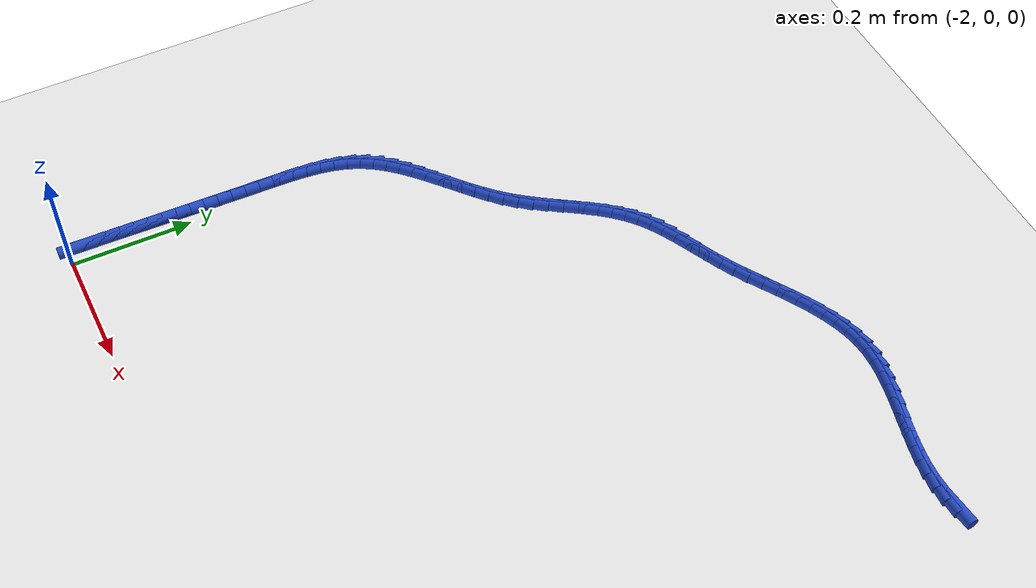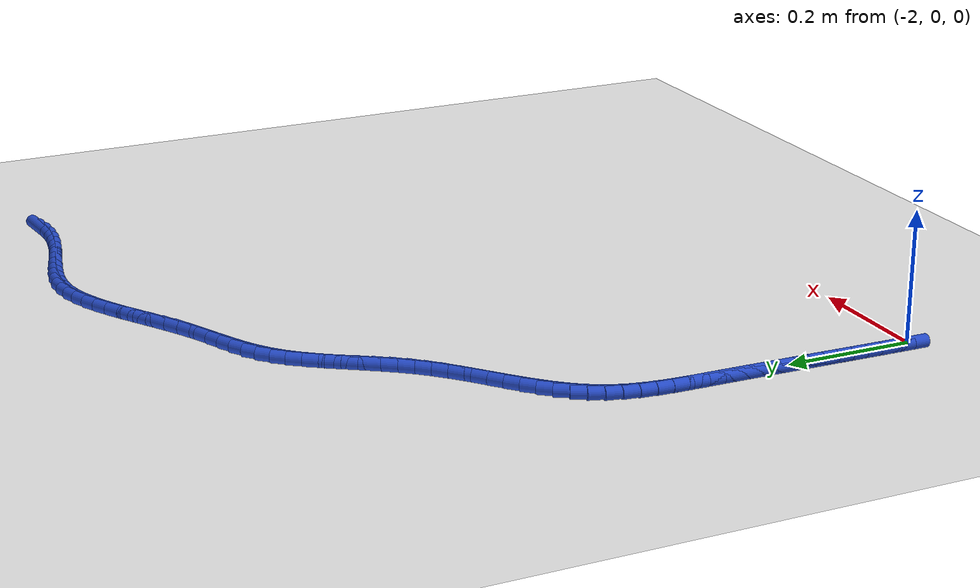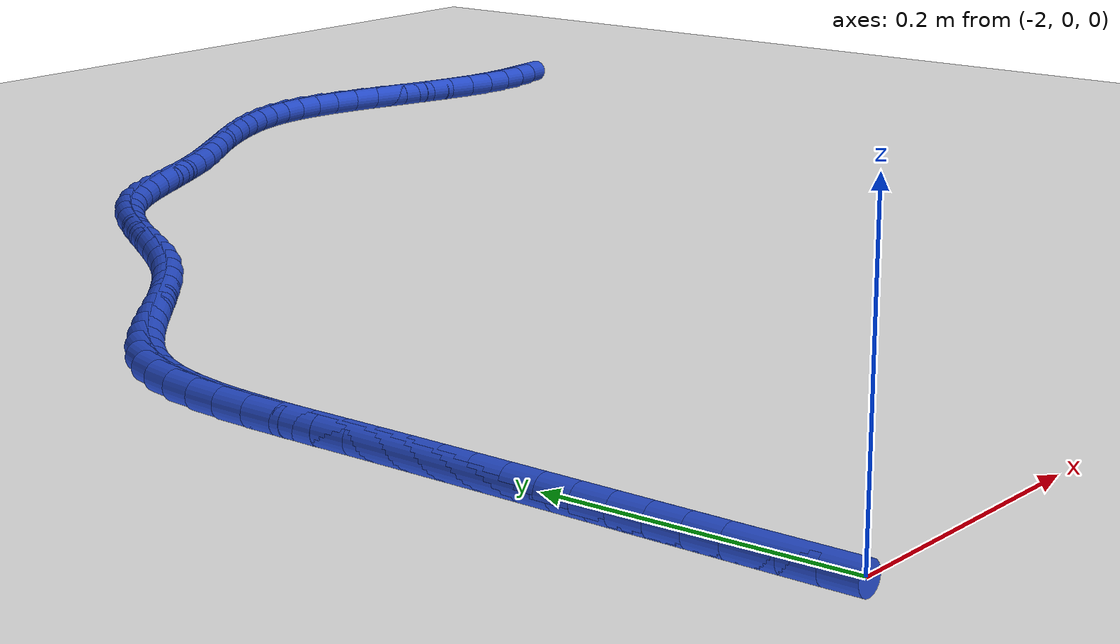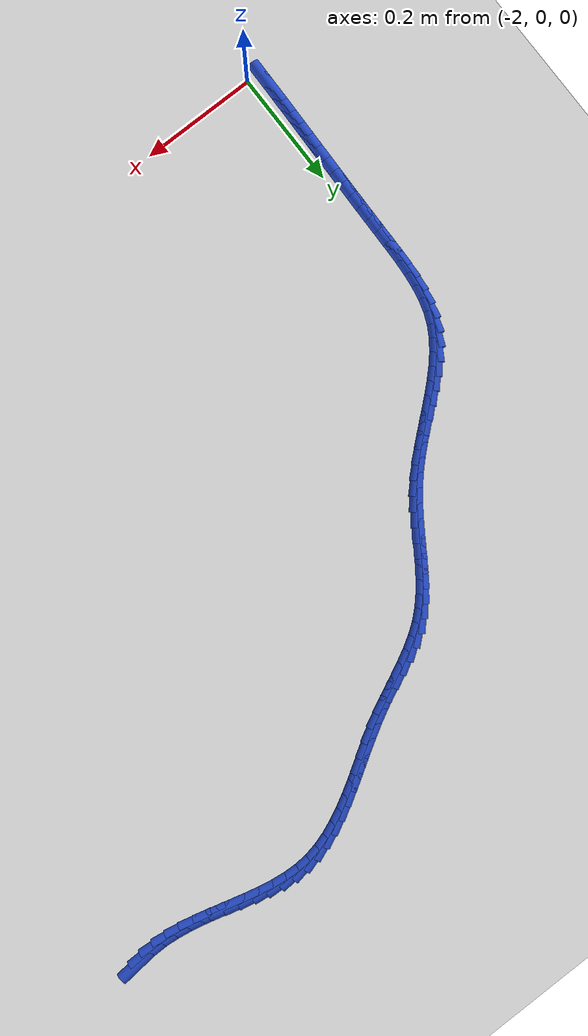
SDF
<sdf version="1.6">
 <world name="default">
  <model name="ground_plane">
   <static>1</static>
   <link name="link">
    <collision name="collision">
     <geometry><plane><normal>0 0 1</normal><size>100 100</size></plane></geometry>
     <surface><friction><ode><mu>100</mu><mu2>50</mu2></ode></friction></surface>
    </collision>
    <visual name="visual">
     <cast_shadows>0</cast_shadows>
     <geometry><plane><normal>0 0 1</normal><size>100 100</size></plane></geometry>
     <material>
      <script><uri>file://media/materials/scripts/gazebo.material</uri><name>Gazebo/WhiteGlow</name></script>
     </material>
    </visual>
   </link>
  </model>
  <model name="line">
   <link name="link_70">
    <pose>-1.0153911365871675 1.0034518861632828 0.01 0 1.57 0.09782782879122977</pose>
    <collision name="collision">
     <geometry><cylinder><radius>0.01</radius><length>0.08</length></cylinder></geometry>
    </collision>
    <visual name="visual">
     <material>
      <script><name>Gazebo/Blue</name><uri>file://media/materials/scripts/gazebo.material</uri></script>
     </material>
     <geometry><cylinder><radius>0.01</radius><length>0.08</length></cylinder></geometry>
    </visual>
   </link>
   <link name="link_71">
    <pose>-1.0383600870854588 1.0011976879082787 0.01 0 1.57 0.010987519701659995</pose>
    <collision name="collision">
     <geometry><cylinder><radius>0.01</radius><length>0.08</length></cylinder></geometry>
    </collision>
    <visual name="visual">
     <material>
      <script><name>Gazebo/Blue</name><uri>file://media/materials/scripts/gazebo.material</uri></script>
     </material>
     <geometry><cylinder><radius>0.01</radius><length>0.08</length></cylinder></geometry>
    </visual>
   </link>
   <link name="link_72">
    <pose>-1.0615263552880936 1.0009431378363367 0.01 0 1.57 -0.08242207969816732</pose>
    <collision name="collision">
     <geometry><cylinder><radius>0.01</radius><length>0.08</length></cylinder></geometry>
    </collision>
    <visual name="visual">
     <material>
      <script><name>Gazebo/Blue</name><uri>file://media/materials/scripts/gazebo.material</uri></script>
     </material>
     <geometry><cylinder><radius>0.01</radius><length>0.08</length></cylinder></geometry>
    </visual>
   </link>
   <link name="link_73">
    <pose>-1.084932706964164 1.0028767185324472 0.01 0 1.57 -0.15783585836957162</pose>
    <collision name="collision">
     <geometry><cylinder><radius>0.01</radius><length>0.08</length></cylinder></geometry>
    </collision>
    <visual name="visual">
     <material>
      <script><name>Gazebo/Blue</name><uri>file://media/materials/scripts/gazebo.material</uri></script>
     </material>
     <geometry><cylinder><radius>0.01</radius><length>0.08</length></cylinder></geometry>
    </visual>
   </link>
   <link name="link_74">
    <pose>-1.1085327808702177 1.0066328999096443 0.01 0 1.57 -0.21141081417048613</pose>
    <collision name="collision">
     <geometry><cylinder><radius>0.01</radius><length>0.08</length></cylinder></geometry>
    </collision>
    <visual name="visual">
     <material>
      <script><name>Gazebo/Blue</name><uri>file://media/materials/scripts/gazebo.material</uri></script>
     </material>
     <geometry><cylinder><radius>0.01</radius><length>0.08</length></cylinder></geometry>
    </visual>
   </link>
   <link name="link_75">
    <pose>-1.1322607819037784 1.011725351195984 0.01 0 1.57 -0.2447751935968459</pose>
    <collision name="collision">
     <geometry><cylinder><radius>0.01</radius><length>0.08</length></cylinder></geometry>
    </collision>
    <visual name="visual">
     <material>
      <script><name>Gazebo/Blue</name><uri>file://media/materials/scripts/gazebo.material</uri></script>
     </material>
     <geometry><cylinder><radius>0.01</radius><length>0.08</length></cylinder></geometry>
    </visual>
   </link>
   <link name="link_76">
    <pose>-1.1560509149623694 1.0176677416195217 0.01 0 1.57 -0.2591472423313343</pose>
    <collision name="collision">
     <geometry><cylinder><radius>0.01</radius><length>0.08</length></cylinder></geometry>
    </collision>
    <visual name="visual">
     <material>
      <script><name>Gazebo/Blue</name><uri>file://media/materials/scripts/gazebo.material</uri></script>
     </material>
     <geometry><cylinder><radius>0.01</radius><length>0.08</length></cylinder></geometry>
    </visual>
   </link>
   <link name="link_77">
    <pose>-1.1798373849435146 1.023973740408313 0.01 0 1.57 -0.2550335485878208</pose>
    <collision name="collision">
     <geometry><cylinder><radius>0.01</radius><length>0.08</length></cylinder></geometry>
    </collision>
    <visual name="visual">
     <material>
      <script><name>Gazebo/Blue</name><uri>file://media/materials/scripts/gazebo.material</uri></script>
     </material>
     <geometry><cylinder><radius>0.01</radius><length>0.08</length></cylinder></geometry>
    </visual>
   </link>
   <link name="link_78">
    <pose>-1.2035543967447362 1.030157016790413 0.01 0 1.57 -0.2321180155048603</pose>
    <collision name="collision">
     <geometry><cylinder><radius>0.01</radius><length>0.08</length></cylinder></geometry>
    </collision>
    <visual name="visual">
     <material>
      <script><name>Gazebo/Blue</name><uri>file://media/materials/scripts/gazebo.material</uri></script>
     </material>
     <geometry><cylinder><radius>0.01</radius><length>0.08</length></cylinder></geometry>
    </visual>
   </link>
   <link name="link_79">
    <pose>-1.2271361552635571 1.0357312399938772 0.01 0 1.57 -0.189268415952359</pose>
    <collision name="collision">
     <geometry><cylinder><radius>0.01</radius><length>0.08</length></cylinder></geometry>
    </collision>
    <visual name="visual">
     <material>
      <script><name>Gazebo/Blue</name><uri>file://media/materials/scripts/gazebo.material</uri></script>
     </material>
     <geometry><cylinder><radius>0.01</radius><length>0.08</length></cylinder></geometry>
    </visual>
   </link>
   <link name="link_80">
    <pose>-1.2505168653975012 1.0402100792467615 0.01 0 1.57 -0.12469113344664708</pose>
    <collision name="collision">
     <geometry><cylinder><radius>0.01</radius><length>0.08</length></cylinder></geometry>
    </collision>
    <visual name="visual">
     <material>
      <script><name>Gazebo/Blue</name><uri>file://media/materials/scripts/gazebo.material</uri></script>
     </material>
     <geometry><cylinder><radius>0.01</radius><length>0.08</length></cylinder></geometry>
    </visual>
   </link>
   <link name="link_81">
    <pose>-1.2736307320440918 1.0431072037771207 0.01 0 1.57 -0.03637702489651573</pose>
    <collision name="collision">
     <geometry><cylinder><radius>0.01</radius><length>0.08</length></cylinder></geometry>
    </collision>
    <visual name="visual">
     <material>
      <script><name>Gazebo/Blue</name><uri>file://media/materials/scripts/gazebo.material</uri></script>
     </material>
     <geometry><cylinder><radius>0.01</radius><length>0.08</length></cylinder></geometry>
    </visual>
   </link>
   <link name="link_82">
    <pose>-1.2964119601008521 1.0439362828130108 0.01 0 1.57 0.07638808209749857</pose>
    <collision name="collision">
     <geometry><cylinder><radius>0.01</radius><length>0.08</length></cylinder></geometry>
    </collision>
    <visual name="visual">
     <material>
      <script><name>Gazebo/Blue</name><uri>file://media/materials/scripts/gazebo.material</uri></script>
     </material>
     <geometry><cylinder><radius>0.01</radius><length>0.08</length></cylinder></geometry>
    </visual>
   </link>
   <link name="link_83">
    <pose>-1.3187967264677185 1.042223019768948 0.01 0 1.57 0.19576556057275368</pose>
    <collision name="collision">
     <geometry><cylinder><radius>0.01</radius><length>0.08</length></cylinder></geometry>
    </collision>
    <visual name="visual">
     <material>
      <script><name>Gazebo/Blue</name><uri>file://media/materials/scripts/gazebo.material</uri></script>
     </material>
     <geometry><cylinder><radius>0.01</radius><length>0.08</length></cylinder></geometry>
    </visual>
   </link>
   <link name="link_84">
    <pose>-1.3407818603540727 1.0378632500613099 0.01 0 1.57 0.2992208809962638</pose>
    <collision name="collision">
     <geometry><cylinder><radius>0.01</radius><length>0.08</length></cylinder></geometry>
    </collision>
    <visual name="visual">
     <material>
      <script><name>Gazebo/Blue</name><uri>file://media/materials/scripts/gazebo.material</uri></script>
     </material>
     <geometry><cylinder><radius>0.01</radius><length>0.08</length></cylinder></geometry>
    </visual>
   </link>
   <link name="link_85">
    <pose>-1.362434798247867 1.0311836915180912 0.01 0 1.57 0.38418802656964063</pose>
    <collision name="collision">
     <geometry><cylinder><radius>0.01</radius><length>0.08</length></cylinder></geometry>
    </collision>
    <visual name="visual">
     <material>
      <script><name>Gazebo/Blue</name><uri>file://media/materials/scripts/gazebo.material</uri></script>
     </material>
     <geometry><cylinder><radius>0.01</radius><length>0.08</length></cylinder></geometry>
    </visual>
   </link>
   <link name="link_86">
    <pose>-1.3838269540597115 1.022535334273225 0.01 0 1.57 0.45091934533482214</pose>
    <collision name="collision">
     <geometry><cylinder><radius>0.01</radius><length>0.08</length></cylinder></geometry>
    </collision>
    <visual name="visual">
     <material>
      <script><name>Gazebo/Blue</name><uri>file://media/materials/scripts/gazebo.material</uri></script>
     </material>
     <geometry><cylinder><radius>0.01</radius><length>0.08</length></cylinder></geometry>
    </visual>
   </link>
   <link name="link_87">
    <pose>-1.4050297417002173 1.0122691684606446 0.01 0 1.57 0.5005217125748276</pose>
    <collision name="collision">
     <geometry><cylinder><radius>0.01</radius><length>0.08</length></cylinder></geometry>
    </collision>
    <visual name="visual">
     <material>
      <script><name>Gazebo/Blue</name><uri>file://media/materials/scripts/gazebo.material</uri></script>
     </material>
     <geometry><cylinder><radius>0.01</radius><length>0.08</length></cylinder></geometry>
    </visual>
   </link>
   <link name="link_88">
    <pose>-1.4261145750799933 1.000736184214284 0.01 0 1.57 0.5343102092895422</pose>
    <collision name="collision">
     <geometry><cylinder><radius>0.01</radius><length>0.08</length></cylinder></geometry>
    </collision>
    <visual name="visual">
     <material>
      <script><name>Gazebo/Blue</name><uri>file://media/materials/scripts/gazebo.material</uri></script>
     </material>
     <geometry><cylinder><radius>0.01</radius><length>0.08</length></cylinder></geometry>
    </visual>
   </link>
   <link name="link_89">
    <pose>-1.4471528681096508 0.9882873716680759 0.01 0 1.57 0.5534334207772104</pose>
    <collision name="collision">
     <geometry><cylinder><radius>0.01</radius><length>0.08</length></cylinder></geometry>
    </collision>
    <visual name="visual">
     <material>
      <script><name>Gazebo/Blue</name><uri>file://media/materials/scripts/gazebo.material</uri></script>
     </material>
     <geometry><cylinder><radius>0.01</radius><length>0.08</length></cylinder></geometry>
    </visual>
   </link>
   <link name="link_90">
    <pose>-1.4682160346998003 0.9752737209559543 0.01 0 1.57 0.5586958250278512</pose>
    <collision name="collision">
     <geometry><cylinder><radius>0.01</radius><length>0.08</length></cylinder></geometry>
    </collision>
    <visual name="visual">
     <material>
      <script><name>Gazebo/Blue</name><uri>file://media/materials/scripts/gazebo.material</uri></script>
     </material>
     <geometry><cylinder><radius>0.01</radius><length>0.08</length></cylinder></geometry>
    </visual>
   </link>
   <link name="link_91">
    <pose>-1.4893754887610522 0.9620462222118521 0.01 0 1.57 0.5504962522842153</pose>
    <collision name="collision">
     <geometry><cylinder><radius>0.01</radius><length>0.08</length></cylinder></geometry>
    </collision>
    <visual name="visual">
     <material>
      <script><name>Gazebo/Blue</name><uri>file://media/materials/scripts/gazebo.material</uri></script>
     </material>
     <geometry><cylinder><radius>0.01</radius><length>0.08</length></cylinder></geometry>
    </visual>
   </link>
   <link name="link_92">
    <pose>-1.5107026442040161 0.9489558655697033 0.01 0 1.57 0.5288317668239446</pose>
    <collision name="collision">
     <geometry><cylinder><radius>0.01</radius><length>0.08</length></cylinder></geometry>
    </collision>
    <visual name="visual">
     <material>
      <script><name>Gazebo/Blue</name><uri>file://media/materials/scripts/gazebo.material</uri></script>
     </material>
     <geometry><cylinder><radius>0.01</radius><length>0.08</length></cylinder></geometry>
    </visual>
   </link>
   <link name="link_93">
    <pose>-1.5322689149393034 0.9363536411634411 0.01 0 1.57 0.493755831559586</pose>
    <collision name="collision">
     <geometry><cylinder><radius>0.01</radius><length>0.08</length></cylinder></geometry>
    </collision>
    <visual name="visual">
     <material>
      <script><name>Gazebo/Blue</name><uri>file://media/materials/scripts/gazebo.material</uri></script>
     </material>
     <geometry><cylinder><radius>0.01</radius><length>0.08</length></cylinder></geometry>
    </visual>
   </link>
   <link name="link_94">
    <pose>-1.5541413616909237 0.9245814040939256 0.01 0 1.57 0.4598547742486325</pose>
    <collision name="collision">
     <geometry><cylinder><radius>0.01</radius><length>0.08</length></cylinder></geometry>
    </collision>
    <visual name="visual">
     <material>
      <script><name>Gazebo/Blue</name><uri>file://media/materials/scripts/gazebo.material</uri></script>
     </material>
     <geometry><cylinder><radius>0.01</radius><length>0.08</length></cylinder></geometry>
    </visual>
   </link>
   <link name="link_95">
    <pose>-1.5762262045556468 0.9136434901722317 0.01 0 1.57 0.44634239594070624</pose>
    <collision name="collision">
     <geometry><cylinder><radius>0.01</radius><length>0.08</length></cylinder></geometry>
    </collision>
    <visual name="visual">
     <material>
      <script><name>Gazebo/Blue</name><uri>file://media/materials/scripts/gazebo.material</uri></script>
     </material>
     <geometry><cylinder><radius>0.01</radius><length>0.08</length></cylinder></geometry>
    </visual>
   </link>
   <link name="link_96">
    <pose>-1.598225453869557 0.9031157070783618 0.01 0 1.57 0.4550290601198802</pose>
    <collision name="collision">
     <geometry><cylinder><radius>0.01</radius><length>0.08</length></cylinder></geometry>
    </collision>
    <visual name="visual">
     <material>
      <script><name>Gazebo/Blue</name><uri>file://media/materials/scripts/gazebo.material</uri></script>
     </material>
     <geometry><cylinder><radius>0.01</radius><length>0.08</length></cylinder></geometry>
    </visual>
   </link>
   <link name="link_97">
    <pose>-1.6198279376918658 0.8925461998749515 0.01 0 1.57 0.4869466151172061</pose>
    <collision name="collision">
     <geometry><cylinder><radius>0.01</radius><length>0.08</length></cylinder></geometry>
    </collision>
    <visual name="visual">
     <material>
      <script><name>Gazebo/Blue</name><uri>file://media/materials/scripts/gazebo.material</uri></script>
     </material>
     <geometry><cylinder><radius>0.01</radius><length>0.08</length></cylinder></geometry>
    </visual>
   </link>
   <link name="link_98">
    <pose>-1.6407224840817858 0.8814831136246382 0.01 0 1.57 0.5434939490834807</pose>
    <collision name="collision">
     <geometry><cylinder><radius>0.01</radius><length>0.08</length></cylinder></geometry>
    </collision>
    <visual name="visual">
     <material>
      <script><name>Gazebo/Blue</name><uri>file://media/materials/scripts/gazebo.material</uri></script>
     </material>
     <geometry><cylinder><radius>0.01</radius><length>0.08</length></cylinder></geometry>
    </visual>
   </link>
   <link name="link_99">
    <pose>-1.6605979210985276 0.8694745933900583 0.01 0 1.57 0.6259131954498796</pose>
    <collision name="collision">
     <geometry><cylinder><radius>0.01</radius><length>0.08</length></cylinder></geometry>
    </collision>
    <visual name="visual">
     <material>
      <script><name>Gazebo/Blue</name><uri>file://media/materials/scripts/gazebo.material</uri></script>
     </material>
     <geometry><cylinder><radius>0.01</radius><length>0.08</length></cylinder></geometry>
    </visual>
   </link>
   <link name="link_100">
    <pose>-1.6791430768013038 0.8560687842338481 0.01 0 1.57 0.7307482890715731</pose>
    <collision name="collision">
     <geometry><cylinder><radius>0.01</radius><length>0.08</length></cylinder></geometry>
    </collision>
    <visual name="visual">
     <material>
      <script><name>Gazebo/Blue</name><uri>file://media/materials/scripts/gazebo.material</uri></script>
     </material>
     <geometry><cylinder><radius>0.01</radius><length>0.08</length></cylinder></geometry>
    </visual>
   </link>
   <link name="link_101">
    <pose>-1.6960967388551773 0.8408737932004038 0.01 0 1.57 0.8279976988671648</pose>
    <collision name="collision">
     <geometry><cylinder><radius>0.01</radius><length>0.08</length></cylinder></geometry>
    </collision>
    <visual name="visual">
     <material>
      <script><name>Gazebo/Blue</name><uri>file://media/materials/scripts/gazebo.material</uri></script>
     </material>
     <geometry><cylinder><radius>0.01</radius><length>0.08</length></cylinder></geometry>
    </visual>
   </link>
   <link name="link_102">
    <pose>-1.7116041265971802 0.8239855303919092 0.01 0 1.57 0.9025857986357847</pose>
    <collision name="collision">
     <geometry><cylinder><radius>0.01</radius><length>0.08</length></cylinder></geometry>
    </collision>
    <visual name="visual">
     <material>
      <script><name>Gazebo/Blue</name><uri>file://media/materials/scripts/gazebo.material</uri></script>
     </material>
     <geometry><cylinder><radius>0.01</radius><length>0.08</length></cylinder></geometry>
    </visual>
   </link>
   <link name="link_103">
    <pose>-1.7260082708718312 0.8057373211143195 0.01 0 1.57 0.9547284005783051</pose>
    <collision name="collision">
     <geometry><cylinder><radius>0.01</radius><length>0.08</length></cylinder></geometry>
    </collision>
    <visual name="visual">
     <material>
      <script><name>Gazebo/Blue</name><uri>file://media/materials/scripts/gazebo.material</uri></script>
     </material>
     <geometry><cylinder><radius>0.01</radius><length>0.08</length></cylinder></geometry>
    </visual>
   </link>
   <link name="link_104">
    <pose>-1.7396535245655038 0.7864640774004691 0.01 0 1.57 0.9855103359040078</pose>
    <collision name="collision">
     <geometry><cylinder><radius>0.01</radius><length>0.08</length></cylinder></geometry>
    </collision>
    <visual name="visual">
     <material>
      <script><name>Gazebo/Blue</name><uri>file://media/materials/scripts/gazebo.material</uri></script>
     </material>
     <geometry><cylinder><radius>0.01</radius><length>0.08</length></cylinder></geometry>
    </visual>
   </link>
   <link name="link_105">
    <pose>-1.752884240564571 0.766500711283194 0.01 0 1.57 0.9960331178437193</pose>
    <collision name="collision">
     <geometry><cylinder><radius>0.01</radius><length>0.08</length></cylinder></geometry>
    </collision>
    <visual name="visual">
     <material>
      <script><name>Gazebo/Blue</name><uri>file://media/materials/scripts/gazebo.material</uri></script>
     </material>
     <geometry><cylinder><radius>0.01</radius><length>0.08</length></cylinder></geometry>
    </visual>
   </link>
   <link name="link_106">
    <pose>-1.7660447717554064 0.7461821347953289 0.01 0 1.57 0.9870452478945319</pose>
    <collision name="collision">
     <geometry><cylinder><radius>0.01</radius><length>0.08</length></cylinder></geometry>
    </collision>
    <visual name="visual">
     <material>
      <script><name>Gazebo/Blue</name><uri>file://media/materials/scripts/gazebo.material</uri></script>
     </material>
     <geometry><cylinder><radius>0.01</radius><length>0.08</length></cylinder></geometry>
    </visual>
   </link>
   <link name="link_107">
    <pose>-1.7794794710243846 0.7258432599697092 0.01 0 1.57 0.9588568464816027</pose>
    <collision name="collision">
     <geometry><cylinder><radius>0.01</radius><length>0.08</length></cylinder></geometry>
    </collision>
    <visual name="visual">
     <material>
      <script><name>Gazebo/Blue</name><uri>file://media/materials/scripts/gazebo.material</uri></script>
     </material>
     <geometry><cylinder><radius>0.01</radius><length>0.08</length></cylinder></geometry>
    </visual>
   </link>
   <link name="link_108">
    <pose>-1.793532691257877 0.7058189988391694 0.01 0 1.57 0.9114645203342018</pose>
    <collision name="collision">
     <geometry><cylinder><radius>0.01</radius><length>0.08</length></cylinder></geometry>
    </collision>
    <visual name="visual">
     <material>
      <script><name>Gazebo/Blue</name><uri>file://media/materials/scripts/gazebo.material</uri></script>
     </material>
     <geometry><cylinder><radius>0.01</radius><length>0.08</length></cylinder></geometry>
    </visual>
   </link>
   <link name="link_109">
    <pose>-1.8085487853422597 0.6864442634365454 0.01 0 1.57 0.8468102616640416</pose>
    <collision name="collision">
     <geometry><cylinder><radius>0.01</radius><length>0.08</length></cylinder></geometry>
    </collision>
    <visual name="visual">
     <material>
      <script><name>Gazebo/Blue</name><uri>file://media/materials/scripts/gazebo.material</uri></script>
     </material>
     <geometry><cylinder><radius>0.01</radius><length>0.08</length></cylinder></geometry>
    </visual>
   </link>
   <link name="link_110">
    <pose>-1.8248346660096881 0.6680243432362047 0.01 0 1.57 0.786531295431837</pose>
    <collision name="collision">
     <geometry><cylinder><radius>0.01</radius><length>0.08</length></cylinder></geometry>
    </collision>
    <visual name="visual">
     <material>
      <script><name>Gazebo/Blue</name><uri>file://media/materials/scripts/gazebo.material</uri></script>
     </material>
     <geometry><cylinder><radius>0.01</radius><length>0.08</length></cylinder></geometry>
    </visual>
   </link>
   <link name="link_111">
    <pose>-1.8422828018042046 0.6505366204842774 0.01 0 1.57 0.7436578281432166</pose>
    <collision name="collision">
     <geometry><cylinder><radius>0.01</radius><length>0.08</length></cylinder></geometry>
    </collision>
    <visual name="visual">
     <material>
      <script><name>Gazebo/Blue</name><uri>file://media/materials/scripts/gazebo.material</uri></script>
     </material>
     <geometry><cylinder><radius>0.01</radius><length>0.08</length></cylinder></geometry>
    </visual>
   </link>
   <link name="link_112">
    <pose>-1.8605278331931914 0.6337544844830793 0.01 0 1.57 0.7178476520900512</pose>
    <collision name="collision">
     <geometry><cylinder><radius>0.01</radius><length>0.08</length></cylinder></geometry>
    </collision>
    <visual name="visual">
     <material>
      <script><name>Gazebo/Blue</name><uri>file://media/materials/scripts/gazebo.material</uri></script>
     </material>
     <geometry><cylinder><radius>0.01</radius><length>0.08</length></cylinder></geometry>
    </visual>
   </link>
   <link name="link_113">
    <pose>-1.879200513104859 0.6174482487234398 0.01 0 1.57 0.7087742691177175</pose>
    <collision name="collision">
     <geometry><cylinder><radius>0.01</radius><length>0.08</length></cylinder></geometry>
    </collision>
    <visual name="visual">
     <material>
      <script><name>Gazebo/Blue</name><uri>file://media/materials/scripts/gazebo.material</uri></script>
     </material>
     <geometry><cylinder><radius>0.01</radius><length>0.08</length></cylinder></geometry>
    </visual>
   </link>
   <link name="link_114">
    <pose>-1.8979315944674169 0.6013882266961902 0.01 0 1.57 0.7165436397375144</pose>
    <collision name="collision">
     <geometry><cylinder><radius>0.01</radius><length>0.08</length></cylinder></geometry>
    </collision>
    <visual name="visual">
     <material>
      <script><name>Gazebo/Blue</name><uri>file://media/materials/scripts/gazebo.material</uri></script>
     </material>
     <geometry><cylinder><radius>0.01</radius><length>0.08</length></cylinder></geometry>
    </visual>
   </link>
   <link name="link_115">
    <pose>-1.916351830209078 0.5853447318921601 0.01 0 1.57 0.7417896890310126</pose>
    <collision name="collision">
     <geometry><cylinder><radius>0.01</radius><length>0.08</length></cylinder></geometry>
    </collision>
    <visual name="visual">
     <material>
      <script><name>Gazebo/Blue</name><uri>file://media/materials/scripts/gazebo.material</uri></script>
     </material>
     <geometry><cylinder><radius>0.01</radius><length>0.08</length></cylinder></geometry>
    </visual>
   </link>
   <link name="link_116">
    <pose>-1.9340919732580513 0.5690880778021798 0.01 0 1.57 0.7856586162709317</pose>
    <collision name="collision">
     <geometry><cylinder><radius>0.01</radius><length>0.08</length></cylinder></geometry>
    </collision>
    <visual name="visual">
     <material>
      <script><name>Gazebo/Blue</name><uri>file://media/materials/scripts/gazebo.material</uri></script>
     </material>
     <geometry><cylinder><radius>0.01</radius><length>0.08</length></cylinder></geometry>
    </visual>
   </link>
   <link name="link_117">
    <pose>-1.9507827765425483 0.5523885779170792 0.01 0 1.57 0.8496338841705936</pose>
    <collision name="collision">
     <geometry><cylinder><radius>0.01</radius><length>0.08</length></cylinder></geometry>
    </collision>
    <visual name="visual">
     <material>
      <script><name>Gazebo/Blue</name><uri>file://media/materials/scripts/gazebo.material</uri></script>
     </material>
     <geometry><cylinder><radius>0.01</radius><length>0.08</length></cylinder></geometry>
    </visual>
   </link>
   <link name="link_118">
    <pose>-1.96605499299078 0.5350165457276892 0.01 0 1.57 0.9350909355980366</pose>
    <collision name="collision">
     <geometry><cylinder><radius>0.01</radius><length>0.08</length></cylinder></geometry>
    </collision>
    <visual name="visual">
     <material>
      <script><name>Gazebo/Blue</name><uri>file://media/materials/scripts/gazebo.material</uri></script>
     </material>
     <geometry><cylinder><radius>0.01</radius><length>0.08</length></cylinder></geometry>
    </visual>
   </link>
   <link name="link_119">
    <pose>-1.9795393755309576 0.5167422947248396 0.01 0 1.57 1.0424511098738443</pose>
    <collision name="collision">
     <geometry><cylinder><radius>0.01</radius><length>0.08</length></cylinder></geometry>
    </collision>
    <visual name="visual">
     <material>
      <script><name>Gazebo/Blue</name><uri>file://media/materials/scripts/gazebo.material</uri></script>
     </material>
     <geometry><cylinder><radius>0.01</radius><length>0.08</length></cylinder></geometry>
    </visual>
   </link>
   <link name="link_120">
    <pose>-1.9908666770912906 0.4973361383993608 0.01 0 1.57 1.1684162316057913</pose>
    <collision name="collision">
     <geometry><cylinder><radius>0.01</radius><length>0.08</length></cylinder></geometry>
    </collision>
    <visual name="visual">
     <material>
      <script><name>Gazebo/Blue</name><uri>file://media/materials/scripts/gazebo.material</uri></script>
     </material>
     <geometry><cylinder><radius>0.01</radius><length>0.08</length></cylinder></geometry>
    </visual>
   </link>
   <link name="link_121">
    <pose>-1.999697527051597 0.476587038721617 0.01 0 1.57 1.2874068565234789</pose>
    <collision name="collision">
     <geometry><cylinder><radius>0.01</radius><length>0.08</length></cylinder></geometry>
    </collision>
    <visual name="visual">
     <material>
      <script><name>Gazebo/Blue</name><uri>file://media/materials/scripts/gazebo.material</uri></script>
     </material>
     <geometry><cylinder><radius>0.01</radius><length>0.08</length></cylinder></geometry>
    </visual>
   </link>
   <link name="link_122">
    <pose>-2.006115853661543 0.45454817512712775 0.01 0 1.57 1.3822493249259864</pose>
    <collision name="collision">
     <geometry><cylinder><radius>0.01</radius><length>0.08</length></cylinder></geometry>
    </collision>
    <visual name="visual">
     <material>
      <script><name>Gazebo/Blue</name><uri>file://media/materials/scripts/gazebo.material</uri></script>
     </material>
     <geometry><cylinder><radius>0.01</radius><length>0.08</length></cylinder></geometry>
    </visual>
   </link>
   <link name="link_123">
    <pose>-2.010519710441817 0.4314687998235448 0.01 0 1.57 1.4542204618017907</pose>
    <collision name="collision">
     <geometry><cylinder><radius>0.01</radius><length>0.08</length></cylinder></geometry>
    </collision>
    <visual name="visual">
     <material>
      <script><name>Gazebo/Blue</name><uri>file://media/materials/scripts/gazebo.material</uri></script>
     </material>
     <geometry><cylinder><radius>0.01</radius><length>0.08</length></cylinder></geometry>
    </visual>
   </link>
   <link name="link_124">
    <pose>-2.013314581821153 0.4076028032914421 0.01 0 1.57 1.5056650798893778</pose>
    <collision name="collision">
     <geometry><cylinder><radius>0.01</radius><length>0.08</length></cylinder></geometry>
    </collision>
    <visual name="visual">
     <material>
      <script><name>Gazebo/Blue</name><uri>file://media/materials/scripts/gazebo.material</uri></script>
     </material>
     <geometry><cylinder><radius>0.01</radius><length>0.08</length></cylinder></geometry>
    </visual>
   </link>
   <link name="link_125">
    <pose>-2.0149059522282804 0.3832040760113937 0.01 0 1.57 1.5386586086296468</pose>
    <collision name="collision">
     <geometry><cylinder><radius>0.01</radius><length>0.08</length></cylinder></geometry>
    </collision>
    <visual name="visual">
     <material>
      <script><name>Gazebo/Blue</name><uri>file://media/materials/scripts/gazebo.material</uri></script>
     </material>
     <geometry><cylinder><radius>0.01</radius><length>0.08</length></cylinder></geometry>
    </visual>
   </link>
   <link name="link_126">
    <pose>-2.01569930609193 0.35852650846397327 0.01 0 1.57 1.5545718030859106</pose>
    <collision name="collision">
     <geometry><cylinder><radius>0.01</radius><length>0.08</length></cylinder></geometry>
    </collision>
    <visual name="visual">
     <material>
      <script><name>Gazebo/Blue</name><uri>file://media/materials/scripts/gazebo.material</uri></script>
     </material>
     <geometry><cylinder><radius>0.01</radius><length>0.08</length></cylinder></geometry>
    </visual>
   </link>
   <link name="link_127">
    <pose>-2.016100127840835 0.33382399112975586 0.01 0 1.57 1.5557562844316384</pose>
    <collision name="collision">
     <geometry><cylinder><radius>0.01</radius><length>0.08</length></cylinder></geometry>
    </collision>
    <visual name="visual">
     <material>
      <script><name>Gazebo/Blue</name><uri>file://media/materials/scripts/gazebo.material</uri></script>
     </material>
     <geometry><cylinder><radius>0.01</radius><length>0.08</length></cylinder></geometry>
    </visual>
   </link>
   <link name="link_128">
    <pose>-2.0164687058212523 0.3093193933391533 0.01 0 1.57 1.5532172200344816</pose>
    <collision name="collision">
     <geometry><cylinder><radius>0.01</radius><length>0.08</length></cylinder></geometry>
    </collision>
    <visual name="visual">
     <material>
      <script><name>Gazebo/Blue</name><uri>file://media/materials/scripts/gazebo.material</uri></script>
     </material>
     <geometry><cylinder><radius>0.01</radius><length>0.08</length></cylinder></geometry>
    </visual>
   </link>
   <link name="link_129">
    <pose>-2.016895378762641 0.28505029961157613 0.01 0 1.57 1.5510474250908324</pose>
    <collision name="collision">
     <geometry><cylinder><radius>0.01</radius><length>0.08</length></cylinder></geometry>
    </collision>
    <visual name="visual">
     <material>
      <script><name>Gazebo/Blue</name><uri>file://media/materials/scripts/gazebo.material</uri></script>
     </material>
     <geometry><cylinder><radius>0.01</radius><length>0.08</length></cylinder></geometry>
    </visual>
   </link>
   <link name="link_130">
    <pose>-2.0173706880589206 0.26098579675685135 0.01 0 1.57 1.5492715364120768</pose>
    <collision name="collision">
     <geometry><cylinder><radius>0.01</radius><length>0.08</length></cylinder></geometry>
    </collision>
    <visual name="visual">
     <material>
      <script><name>Gazebo/Blue</name><uri>file://media/materials/scripts/gazebo.material</uri></script>
     </material>
     <geometry><cylinder><radius>0.01</radius><length>0.08</length></cylinder></geometry>
    </visual>
   </link>
   <link name="link_131">
    <pose>-2.0178850148646887 0.2370948616016437 0.01 0 1.57 1.5479050706010848</pose>
    <collision name="collision">
     <geometry><cylinder><radius>0.01</radius><length>0.08</length></cylinder></geometry>
    </collision>
    <visual name="visual">
     <material>
      <script><name>Gazebo/Blue</name><uri>file://media/materials/scripts/gazebo.material</uri></script>
     </material>
     <geometry><cylinder><radius>0.01</radius><length>0.08</length></cylinder></geometry>
    </visual>
   </link>
   <link name="link_132">
    <pose>-2.0184287403345436 0.21334647097261883 0.01 0 1.57 1.5469607434012527</pose>
    <collision name="collision">
     <geometry><cylinder><radius>0.01</radius><length>0.08</length></cylinder></geometry>
    </collision>
    <visual name="visual">
     <material>
      <script><name>Gazebo/Blue</name><uri>file://media/materials/scripts/gazebo.material</uri></script>
     </material>
     <geometry><cylinder><radius>0.01</radius><length>0.08</length></cylinder></geometry>
    </visual>
   </link>
   <link name="link_133">
    <pose>-2.0189922456230818 0.18970960169644127 0.01 0 1.57 1.5464482261135721</pose>
    <collision name="collision">
     <geometry><cylinder><radius>0.01</radius><length>0.08</length></cylinder></geometry>
    </collision>
    <visual name="visual">
     <material>
      <script><name>Gazebo/Blue</name><uri>file://media/materials/scripts/gazebo.material</uri></script>
     </material>
     <geometry><cylinder><radius>0.01</radius><length>0.08</length></cylinder></geometry>
    </visual>
   </link>
   <link name="link_134">
    <pose>-2.019565911884902 0.16615323059977608 0.01 0 1.57 1.5463739521736168</pose>
    <collision name="collision">
     <geometry><cylinder><radius>0.01</radius><length>0.08</length></cylinder></geometry>
    </collision>
    <visual name="visual">
     <material>
      <script><name>Gazebo/Blue</name><uri>file://media/materials/scripts/gazebo.material</uri></script>
     </material>
     <geometry><cylinder><radius>0.01</radius><length>0.08</length></cylinder></geometry>
    </visual>
   </link>
   <link name="link_135">
    <pose>-2.020140120274601 0.1426463345092877 0.01 0 1.57 1.5467409804523546</pose>
    <collision name="collision">
     <geometry><cylinder><radius>0.01</radius><length>0.08</length></cylinder></geometry>
    </collision>
    <visual name="visual">
     <material>
      <script><name>Gazebo/Blue</name><uri>file://media/materials/scripts/gazebo.material</uri></script>
     </material>
     <geometry><cylinder><radius>0.01</radius><length>0.08</length></cylinder></geometry>
    </visual>
   </link>
   <link name="link_136">
    <pose>-2.020705251946777 0.11915789025164192 0.01 0 1.57 1.54754892012731</pose>
    <collision name="collision">
     <geometry><cylinder><radius>0.01</radius><length>0.08</length></cylinder></geometry>
    </collision>
    <visual name="visual">
     <material>
      <script><name>Gazebo/Blue</name><uri>file://media/materials/scripts/gazebo.material</uri></script>
     </material>
     <geometry><cylinder><radius>0.01</radius><length>0.08</length></cylinder></geometry>
    </visual>
   </link>
   <link name="link_137">
    <pose>-2.021251688056028 0.0956568746535033 0.01 0 1.57 1.5487939199948062</pose>
    <collision name="collision">
     <geometry><cylinder><radius>0.01</radius><length>0.08</length></cylinder></geometry>
    </collision>
    <visual name="visual">
     <material>
      <script><name>Gazebo/Blue</name><uri>file://media/materials/scripts/gazebo.material</uri></script>
     </material>
     <geometry><cylinder><radius>0.01</radius><length>0.08</length></cylinder></geometry>
    </visual>
   </link>
   <link name="link_138">
    <pose>-2.021769809756951 0.07211226454153677 0.01 0 1.57 1.5504687229603618</pose>
    <collision name="collision">
     <geometry><cylinder><radius>0.01</radius><length>0.08</length></cylinder></geometry>
    </collision>
    <visual name="visual">
     <material>
      <script><name>Gazebo/Blue</name><uri>file://media/materials/scripts/gazebo.material</uri></script>
     </material>
     <geometry><cylinder><radius>0.01</radius><length>0.08</length></cylinder></geometry>
    </visual>
   </link>
   <link name="link_139">
    <pose>-2.022249998204144 0.04849303674240731 0.01 0 1.57 1.552562784255849</pose>
    <collision name="collision">
     <geometry><cylinder><radius>0.01</radius><length>0.08</length></cylinder></geometry>
    </collision>
    <visual name="visual">
     <material>
      <script><name>Gazebo/Blue</name><uri>file://media/materials/scripts/gazebo.material</uri></script>
     </material>
     <geometry><cylinder><radius>0.01</radius><length>0.08</length></cylinder></geometry>
    </visual>
   </link>
   <link name="link_140">
    <pose>-2.0226826345522047 0.024768168082779485 0.01 0 1.57 1.5550985247395983</pose>
    <collision name="collision">
     <geometry><cylinder><radius>0.01</radius><length>0.08</length></cylinder></geometry>
    </collision>
    <visual name="visual">
     <material>
      <script><name>Gazebo/Blue</name><uri>file://media/materials/scripts/gazebo.material</uri></script>
     </material>
     <geometry><cylinder><radius>0.01</radius><length>0.08</length></cylinder></geometry>
    </visual>
   </link>
  </model>
 </world>
</sdf>
